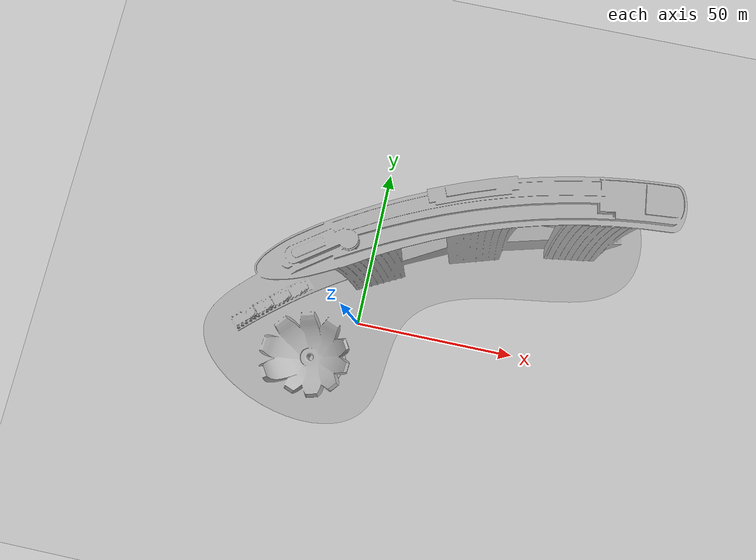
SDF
<sdf version="1.7">
 <world name="default">
  <plugin name="ros_interface_plugin" filename="librotors_gazebo_ros_interface_plugin.so"/>
  <light name="sun" type="directional">
   <cast_shadows>0</cast_shadows>
   <pose>0 0 10 0 -0 0</pose>
   <diffuse>0.8 0.8 0.8 1</diffuse>
   <specular>0.1 0.1 0.1 1</specular>
   <attenuation>
    <range>1000</range>
    <constant>0.9</constant>
    <linear>0.01</linear>
    <quadratic>0.001</quadratic>
   </attenuation>
   <direction>-0.5 0.5 -1</direction>
   <spot><inner_angle>0</inner_angle><outer_angle>0</outer_angle><falloff>0</falloff></spot>
  </light>
  <model name="ground_plane">
   <static>1</static>
   <link name="link">
    <collision name="collision">
     <geometry><plane><normal>0 0 1</normal><size>2000 2000</size></plane></geometry>
     <surface><friction><ode><mu>100</mu><mu2>50</mu2></ode></friction></surface>
    </collision>
    <visual name="visual">
     <cast_shadows>0</cast_shadows>
     <geometry><plane><normal>0 0 1</normal><size>2000 2000</size></plane></geometry>
     <material>
      <script><uri>file://media/materials/scripts/gazebo.material</uri><name>Gazebo/Grey</name></script>
     </material>
    </visual>
   </link>
  </model>
  <gravity>0 0 -9.8</gravity>
  <magnetic_field>6e-06 2.3e-05 -4.2e-05</magnetic_field>
  <atmosphere type="adiabatic"/>
  <physics name="default_physics" default="0" type="ode">
   <max_step_size>0.0025</max_step_size>
   <real_time_factor>1.0</real_time_factor>
   <real_time_update_rate>400</real_time_update_rate>
  </physics>
  <plugin name="gazebo_octomap" filename="librotors_gazebo_octomap_plugin.so">
   <octomapPubTopic>world/octomap</octomapPubTopic>
   <octomapServiceName>world/get_octomap</octomapServiceName>
  </plugin>
  <scene><ambient>0.4 0.4 0.4 1</ambient><background>0.7 0.7 0.7 1</background><shadows>0</shadows></scene>
  <spherical_coordinates>
   <surface_model>EARTH_WGS84</surface_model>
   <latitude_deg>0</latitude_deg>
   <longitude_deg>0</longitude_deg>
   <elevation>0</elevation>
   <heading_deg>0</heading_deg>
  </spherical_coordinates>
  <model name="mbs">
   <static>1</static>
   <link name="body">
    <collision name="collision">
     <geometry><mesh><uri>file://mbs/mbs.stl</uri><scale>1 1 1</scale></mesh></geometry>
    </collision>
    <visual name="visual"><geometry><mesh><uri>file://mbs/mbs.stl</uri></mesh></geometry></visual>
   </link>
  </model>
 </world>
</sdf>
